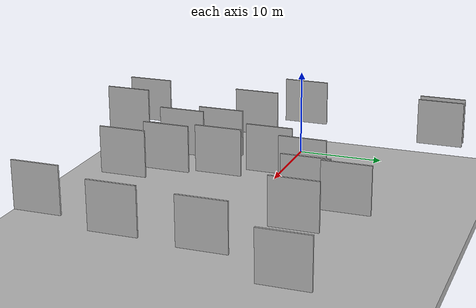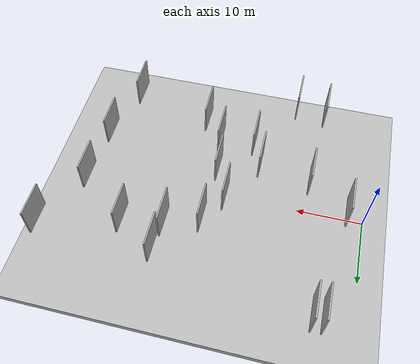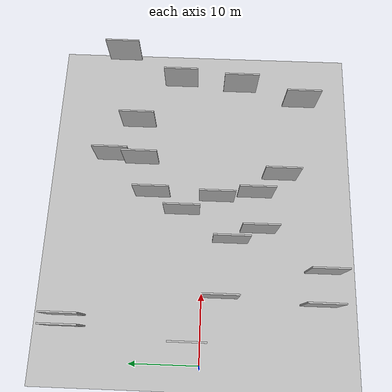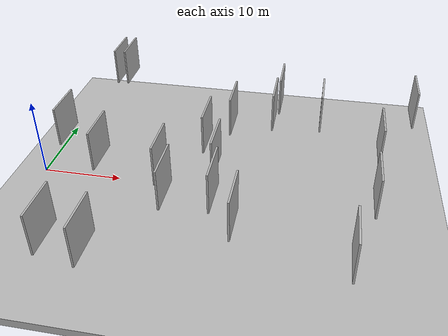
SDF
<?xml version="1.0" encoding="utf-8"?>

<sdf version="1.6">

   <world name="default">

      <gui fullscreen="0">

         <camera name="user_camera">

            <pose>-15 0 4.57585 0 0 0</pose>

            <view_controller>orbit</view_controller>

         </camera>

      </gui>

      <scene>

         <sky>

           <clouds>

             <speed>12</speed>

           </clouds>

         </sky>

         <ambient>0.4 0.4 0.4 1</ambient>

         <background>0.7 0.7 0.7 1</background>

         <shadows>1</shadows>

      </scene>

      <gravity>0 0 -9.8066</gravity>

      <magnetic_field>6e-06 2.3e-05 -4.2e-05</magnetic_field>

      <physics default="0" name="default_physics" type="ode">

         <ode>

            <solver>

               <type>quick</type>

               <iters>10</iters>

               <sor>1.0</sor>

               <use_dynamic_moi_rescaling>0</use_dynamic_moi_rescaling>

            </solver>

            <constraints>

               <cfm>0</cfm>

               <erp>0.2</erp>

               <contact_max_correcting_vel>100</contact_max_correcting_vel>

               <contact_surface_layer>0.001</contact_surface_layer>

            </constraints>

         </ode>

         <max_step_size>0.004</max_step_size>

         <real_time_factor>1</real_time_factor>

         <real_time_update_rate>250</real_time_update_rate>

      </physics>

      <light name="sun" type="directional">

         <cast_shadows>1</cast_shadows>

         <pose>0 0 10 0 0 0</pose>

         <diffuse>0.8 0.8 0.8 1</diffuse>

         <specular>0.2 0.2 0.2 1</specular>

         <attenuation>

            <range>1000</range>

            <constant>0.9</constant>

            <linear>0.01</linear>

            <quadratic>0.001</quadratic>

         </attenuation>

         <direction>-0.5 0.1 -0.9</direction>

      </light>

      <include>

         <name>ground_plane_1</name>

         <uri>model://HANNAS_ground_plane</uri>

         <pose>0 0 0  0 0 0</pose>

      </include>

      <include>

         <name>ground_plane_2</name>

         <uri>model://HANNAS_ground_plane</uri>

         <pose>100 0 0  0 0 0</pose>

      </include>

      <model name="HANNAS_wall_1">

         <static>1</static>

         <pose frame="">26.5511 -10.7460 5.0 0.000000 0.000000 1.570796</pose>

         <link name="link">

            <pose frame="">0 0 2.50 0 0 0</pose>

            <collision name="collision">

               <geometry>

                  <box>

                     <size>5.00 0.2 5.00</size>

                  </box>

               </geometry>

               <max_contacts>10</max_contacts>

               <surface>

                  <contact>

                     <ode/>

                  </contact>

                  <bounce/>

                  <friction>

                     <torsional>

                        <ode/>

                     </torsional>

                     <ode/>

                  </friction>

               </surface>

            </collision>

            <visual name="visual">

               <cast_shadows>0</cast_shadows>

               <geometry>

                  <box>

                     <size>5.00 0.2 5.00</size>

                  </box>

               </geometry>

               <material>

                  <script>

                     <uri>model://HANNAS_wall/materials/scripts</uri>

                     <uri>model://HANNAS_wall/materials/textures</uri>

                     <name>vrc/HANNAS_wall</name>

                  </script>

               </material>

            </visual>

            <self_collide>0</self_collide>

            <enable_wind>0</enable_wind>

            <kinematic>0</kinematic>

         </link>

      </model>

      <model name="HANNAS_wall_2">

         <static>1</static>

         <pose frame="">3.2593 1.6454 5.0 0.000000 0.000000 1.570796</pose>

         <link name="link">

            <pose frame="">0 0 2.50 0 0 0</pose>

            <collision name="collision">

               <geometry>

                  <box>

                     <size>5.00 0.2 5.00</size>

                  </box>

               </geometry>

               <max_contacts>10</max_contacts>

               <surface>

                  <contact>

                     <ode/>

                  </contact>

                  <bounce/>

                  <friction>

                     <torsional>

                        <ode/>

                     </torsional>

                     <ode/>

                  </friction>

               </surface>

            </collision>

            <visual name="visual">

               <cast_shadows>0</cast_shadows>

               <geometry>

                  <box>

                     <size>5.00 0.2 5.00</size>

                  </box>

               </geometry>

               <material>

                  <script>

                     <uri>model://HANNAS_wall/materials/scripts</uri>

                     <uri>model://HANNAS_wall/materials/textures</uri>

                     <name>vrc/HANNAS_wall</name>

                  </script>

               </material>

            </visual>

            <self_collide>0</self_collide>

            <enable_wind>0</enable_wind>

            <kinematic>0</kinematic>

         </link>

      </model>

      <model name="HANNAS_wall_3">

         <static>1</static>

         <pose frame="">40.8356 -4.8632 5.0 0.000000 0.000000 1.570796</pose>

         <link name="link">

            <pose frame="">0 0 2.50 0 0 0</pose>

            <collision name="collision">

               <geometry>

                  <box>

                     <size>5.00 0.2 5.00</size>

                  </box>

               </geometry>

               <max_contacts>10</max_contacts>

               <surface>

                  <contact>

                     <ode/>

                  </contact>

                  <bounce/>

                  <friction>

                     <torsional>

                        <ode/>

                     </torsional>

                     <ode/>

                  </friction>

               </surface>

            </collision>

            <visual name="visual">

               <cast_shadows>0</cast_shadows>

               <geometry>

                  <box>

                     <size>5.00 0.2 5.00</size>

                  </box>

               </geometry>

               <material>

                  <script>

                     <uri>model://HANNAS_wall/materials/scripts</uri>

                     <uri>model://HANNAS_wall/materials/textures</uri>

                     <name>vrc/HANNAS_wall</name>

                  </script>

               </material>

            </visual>

            <self_collide>0</self_collide>

            <enable_wind>0</enable_wind>

            <kinematic>0</kinematic>

         </link>

      </model>

      <model name="HANNAS_wall_4">

         <static>1</static>

         <pose frame="">38.5393 -13.8906 5.0 0.000000 0.000000 1.570796</pose>

         <link name="link">

            <pose frame="">0 0 2.50 0 0 0</pose>

            <collision name="collision">

               <geometry>

                  <box>

                     <size>5.00 0.2 5.00</size>

                  </box>

               </geometry>

               <max_contacts>10</max_contacts>

               <surface>

                  <contact>

                     <ode/>

                  </contact>

                  <bounce/>

                  <friction>

                     <torsional>

                        <ode/>

                     </torsional>

                     <ode/>

                  </friction>

               </surface>

            </collision>

            <visual name="visual">

               <cast_shadows>0</cast_shadows>

               <geometry>

                  <box>

                     <size>5.00 0.2 5.00</size>

                  </box>

               </geometry>

               <material>

                  <script>

                     <uri>model://HANNAS_wall/materials/scripts</uri>

                     <uri>model://HANNAS_wall/materials/textures</uri>

                     <name>vrc/HANNAS_wall</name>

                  </script>

               </material>

            </visual>

            <self_collide>0</self_collide>

            <enable_wind>0</enable_wind>

            <kinematic>0</kinematic>

         </link>

      </model>

      <model name="HANNAS_wall_5">

         <static>1</static>

         <pose frame="">28.8122 13.5344 5.0 0.000000 0.000000 1.570796</pose>

         <link name="link">

            <pose frame="">0 0 2.50 0 0 0</pose>

            <collision name="collision">

               <geometry>

                  <box>

                     <size>5.00 0.2 5.00</size>

                  </box>

               </geometry>

               <max_contacts>10</max_contacts>

               <surface>

                  <contact>

                     <ode/>

                  </contact>

                  <bounce/>

                  <friction>

                     <torsional>

                        <ode/>

                     </torsional>

                     <ode/>

                  </friction>

               </surface>

            </collision>

            <visual name="visual">

               <cast_shadows>0</cast_shadows>

               <geometry>

                  <box>

                     <size>5.00 0.2 5.00</size>

                  </box>

               </geometry>

               <material>

                  <script>

                     <uri>model://HANNAS_wall/materials/scripts</uri>

                     <uri>model://HANNAS_wall/materials/textures</uri>

                     <name>vrc/HANNAS_wall</name>

                  </script>

               </material>

            </visual>

            <self_collide>0</self_collide>

            <enable_wind>0</enable_wind>

            <kinematic>0</kinematic>

         </link>

      </model>

      <model name="HANNAS_wall_6">

         <static>1</static>

         <pose frame="">16.8588 -3.7617 5.0 0.000000 0.000000 1.570796</pose>

         <link name="link">

            <pose frame="">0 0 2.50 0 0 0</pose>

            <collision name="collision">

               <geometry>

                  <box>

                     <size>5.00 0.2 5.00</size>

                  </box>

               </geometry>

               <max_contacts>10</max_contacts>

               <surface>

                  <contact>

                     <ode/>

                  </contact>

                  <bounce/>

                  <friction>

                     <torsional>

                        <ode/>

                     </torsional>

                     <ode/>

                  </friction>

               </surface>

            </collision>

            <visual name="visual">

               <cast_shadows>0</cast_shadows>

               <geometry>

                  <box>

                     <size>5.00 0.2 5.00</size>

                  </box>

               </geometry>

               <material>

                  <script>

                     <uri>model://HANNAS_wall/materials/scripts</uri>

                     <uri>model://HANNAS_wall/materials/textures</uri>

                     <name>vrc/HANNAS_wall</name>

                  </script>

               </material>

            </visual>

            <self_collide>0</self_collide>

            <enable_wind>0</enable_wind>

            <kinematic>0</kinematic>

         </link>

      </model>

      <model name="HANNAS_wall_7">

         <static>1</static>

         <pose frame="">20.8254 3.1237 5.0 0.000000 0.000000 1.570796</pose>

         <link name="link">

            <pose frame="">0 0 2.50 0 0 0</pose>

            <collision name="collision">

               <geometry>

                  <box>

                     <size>5.00 0.2 5.00</size>

                  </box>

               </geometry>

               <max_contacts>10</max_contacts>

               <surface>

                  <contact>

                     <ode/>

                  </contact>

                  <bounce/>

                  <friction>

                     <torsional>

                        <ode/>

                     </torsional>

                     <ode/>

                  </friction>

               </surface>

            </collision>

            <visual name="visual">

               <cast_shadows>0</cast_shadows>

               <geometry>

                  <box>

                     <size>5.00 0.2 5.00</size>

                  </box>

               </geometry>

               <material>

                  <script>

                     <uri>model://HANNAS_wall/materials/scripts</uri>

                     <uri>model://HANNAS_wall/materials/textures</uri>

                     <name>vrc/HANNAS_wall</name>

                  </script>

               </material>

            </visual>

            <self_collide>0</self_collide>

            <enable_wind>0</enable_wind>

            <kinematic>0</kinematic>

         </link>

      </model>

      <model name="HANNAS_wall_8">

         <static>1</static>

         <pose frame="">8.5311 -15.8332 5.0 0.000000 0.000000 1.570796</pose>

         <link name="link">

            <pose frame="">0 0 2.50 0 0 0</pose>

            <collision name="collision">

               <geometry>

                  <box>

                     <size>5.00 0.2 5.00</size>

                  </box>

               </geometry>

               <max_contacts>10</max_contacts>

               <surface>

                  <contact>

                     <ode/>

                  </contact>

                  <bounce/>

                  <friction>

                     <torsional>

                        <ode/>

                     </torsional>

                     <ode/>

                  </friction>

               </surface>

            </collision>

            <visual name="visual">

               <cast_shadows>0</cast_shadows>

               <geometry>

                  <box>

                     <size>5.00 0.2 5.00</size>

                  </box>

               </geometry>

               <material>

                  <script>

                     <uri>model://HANNAS_wall/materials/scripts</uri>

                     <uri>model://HANNAS_wall/materials/textures</uri>

                     <name>vrc/HANNAS_wall</name>

                  </script>

               </material>

            </visual>

            <self_collide>0</self_collide>

            <enable_wind>0</enable_wind>

            <kinematic>0</kinematic>

         </link>

      </model>

      <model name="HANNAS_wall_9">

         <static>1</static>

         <pose frame="">9.1746 -2.4098 5.0 0.000000 0.000000 1.570796</pose>

         <link name="link">

            <pose frame="">0 0 2.50 0 0 0</pose>

            <collision name="collision">

               <geometry>

                  <box>

                     <size>5.00 0.2 5.00</size>

                  </box>

               </geometry>

               <max_contacts>10</max_contacts>

               <surface>

                  <contact>

                     <ode/>

                  </contact>

                  <bounce/>

                  <friction>

                     <torsional>

                        <ode/>

                     </torsional>

                     <ode/>

                  </friction>

               </surface>

            </collision>

            <visual name="visual">

               <cast_shadows>0</cast_shadows>

               <geometry>

                  <box>

                     <size>5.00 0.2 5.00</size>

                  </box>

               </geometry>

               <material>

                  <script>

                     <uri>model://HANNAS_wall/materials/scripts</uri>

                     <uri>model://HANNAS_wall/materials/textures</uri>

                     <name>vrc/HANNAS_wall</name>

                  </script>

               </material>

            </visual>

            <self_collide>0</self_collide>

            <enable_wind>0</enable_wind>

            <kinematic>0</kinematic>

         </link>

      </model>

      <model name="HANNAS_wall_10">

         <static>1</static>

         <pose frame="">23.2894 7.4678 5.0 0.000000 0.000000 1.570796</pose>

         <link name="link">

            <pose frame="">0 0 2.50 0 0 0</pose>

            <collision name="collision">

               <geometry>

                  <box>

                     <size>5.00 0.2 5.00</size>

                  </box>

               </geometry>

               <max_contacts>10</max_contacts>

               <surface>

                  <contact>

                     <ode/>

                  </contact>

                  <bounce/>

                  <friction>

                     <torsional>

                        <ode/>

                     </torsional>

                     <ode/>

                  </friction>

               </surface>

            </collision>

            <visual name="visual">

               <cast_shadows>0</cast_shadows>

               <geometry>

                  <box>

                     <size>5.00 0.2 5.00</size>

                  </box>

               </geometry>

               <material>

                  <script>

                     <uri>model://HANNAS_wall/materials/scripts</uri>

                     <uri>model://HANNAS_wall/materials/textures</uri>

                     <name>vrc/HANNAS_wall</name>

                  </script>

               </material>

            </visual>

            <self_collide>0</self_collide>

            <enable_wind>0</enable_wind>

            <kinematic>0</kinematic>

         </link>

      </model>

      <model name="HANNAS_wall_11">

         <static>1</static>

         <pose frame="">18.4514 -7.6210 5.0 0.000000 0.000000 1.570796</pose>

         <link name="link">

            <pose frame="">0 0 2.50 0 0 0</pose>

            <collision name="collision">

               <geometry>

                  <box>

                     <size>5.00 0.2 5.00</size>

                  </box>

               </geometry>

               <max_contacts>10</max_contacts>

               <surface>

                  <contact>

                     <ode/>

                  </contact>

                  <bounce/>

                  <friction>

                     <torsional>

                        <ode/>

                     </torsional>

                     <ode/>

                  </friction>

               </surface>

            </collision>

            <visual name="visual">

               <cast_shadows>0</cast_shadows>

               <geometry>

                  <box>

                     <size>5.00 0.2 5.00</size>

                  </box>

               </geometry>

               <material>

                  <script>

                     <uri>model://HANNAS_wall/materials/scripts</uri>

                     <uri>model://HANNAS_wall/materials/textures</uri>

                     <name>vrc/HANNAS_wall</name>

                  </script>

               </material>

            </visual>

            <self_collide>0</self_collide>

            <enable_wind>0</enable_wind>

            <kinematic>0</kinematic>

         </link>

      </model>

      <model name="HANNAS_wall_12">

         <static>1</static>

         <pose frame="">4.7697 17.9008 5.0 0.000000 0.000000 1.570796</pose>

         <link name="link">

            <pose frame="">0 0 2.50 0 0 0</pose>

            <collision name="collision">

               <geometry>

                  <box>

                     <size>5.00 0.2 5.00</size>

                  </box>

               </geometry>

               <max_contacts>10</max_contacts>

               <surface>

                  <contact>

                     <ode/>

                  </contact>

                  <bounce/>

                  <friction>

                     <torsional>

                        <ode/>

                     </torsional>

                     <ode/>

                  </friction>

               </surface>

            </collision>

            <visual name="visual">

               <cast_shadows>0</cast_shadows>

               <geometry>

                  <box>

                     <size>5.00 0.2 5.00</size>

                  </box>

               </geometry>

               <material>

                  <script>

                     <uri>model://HANNAS_wall/materials/scripts</uri>

                     <uri>model://HANNAS_wall/materials/textures</uri>

                     <name>vrc/HANNAS_wall</name>

                  </script>

               </material>

            </visual>

            <self_collide>0</self_collide>

            <enable_wind>0</enable_wind>

            <kinematic>0</kinematic>

         </link>

      </model>

      <model name="HANNAS_wall_13">

         <static>1</static>

         <pose frame="">6.2085 17.9881 5.0 0.000000 0.000000 1.570796</pose>

         <link name="link">

            <pose frame="">0 0 2.50 0 0 0</pose>

            <collision name="collision">

               <geometry>

                  <box>

                     <size>5.00 0.2 5.00</size>

                  </box>

               </geometry>

               <max_contacts>10</max_contacts>

               <surface>

                  <contact>

                     <ode/>

                  </contact>

                  <bounce/>

                  <friction>

                     <torsional>

                        <ode/>

                     </torsional>

                     <ode/>

                  </friction>

               </surface>

            </collision>

            <visual name="visual">

               <cast_shadows>0</cast_shadows>

               <geometry>

                  <box>

                     <size>5.00 0.2 5.00</size>

                  </box>

               </geometry>

               <material>

                  <script>

                     <uri>model://HANNAS_wall/materials/scripts</uri>

                     <uri>model://HANNAS_wall/materials/textures</uri>

                     <name>vrc/HANNAS_wall</name>

                  </script>

               </material>

            </visual>

            <self_collide>0</self_collide>

            <enable_wind>0</enable_wind>

            <kinematic>0</kinematic>

         </link>

      </model>

      <model name="HANNAS_wall_14">

         <static>1</static>

         <pose frame="">12.9958 -16.5812 5.0 0.000000 0.000000 1.570796</pose>

         <link name="link">

            <pose frame="">0 0 2.50 0 0 0</pose>

            <collision name="collision">

               <geometry>

                  <box>

                     <size>5.00 0.2 5.00</size>

                  </box>

               </geometry>

               <max_contacts>10</max_contacts>

               <surface>

                  <contact>

                     <ode/>

                  </contact>

                  <bounce/>

                  <friction>

                     <torsional>

                        <ode/>

                     </torsional>

                     <ode/>

                  </friction>

               </surface>

            </collision>

            <visual name="visual">

               <cast_shadows>0</cast_shadows>

               <geometry>

                  <box>

                     <size>5.00 0.2 5.00</size>

                  </box>

               </geometry>

               <material>

                  <script>

                     <uri>model://HANNAS_wall/materials/scripts</uri>

                     <uri>model://HANNAS_wall/materials/textures</uri>

                     <name>vrc/HANNAS_wall</name>

                  </script>

               </material>

            </visual>

            <self_collide>0</self_collide>

            <enable_wind>0</enable_wind>

            <kinematic>0</kinematic>

         </link>

      </model>

      <model name="HANNAS_wall_15">

         <static>1</static>

         <pose frame="">34.3257 10.1600 5.0 0.000000 0.000000 1.570796</pose>

         <link name="link">

            <pose frame="">0 0 2.50 0 0 0</pose>

            <collision name="collision">

               <geometry>

                  <box>

                     <size>5.00 0.2 5.00</size>

                  </box>

               </geometry>

               <max_contacts>10</max_contacts>

               <surface>

                  <contact>

                     <ode/>

                  </contact>

                  <bounce/>

                  <friction>

                     <torsional>

                        <ode/>

                     </torsional>

                     <ode/>

                  </friction>

               </surface>

            </collision>

            <visual name="visual">

               <cast_shadows>0</cast_shadows>

               <geometry>

                  <box>

                     <size>5.00 0.2 5.00</size>

                  </box>

               </geometry>

               <material>

                  <script>

                     <uri>model://HANNAS_wall/materials/scripts</uri>

                     <uri>model://HANNAS_wall/materials/textures</uri>

                     <name>vrc/HANNAS_wall</name>

                  </script>

               </material>

            </visual>

            <self_collide>0</self_collide>

            <enable_wind>0</enable_wind>

            <kinematic>0</kinematic>

         </link>

      </model>

      <model name="HANNAS_wall_16">

         <static>1</static>

         <pose frame="">41.4924 4.1172 5.0 0.000000 0.000000 1.570796</pose>

         <link name="link">

            <pose frame="">0 0 2.50 0 0 0</pose>

            <collision name="collision">

               <geometry>

                  <box>

                     <size>5.00 0.2 5.00</size>

                  </box>

               </geometry>

               <max_contacts>10</max_contacts>

               <surface>

                  <contact>

                     <ode/>

                  </contact>

                  <bounce/>

                  <friction>

                     <torsional>

                        <ode/>

                     </torsional>

                     <ode/>

                  </friction>

               </surface>

            </collision>

            <visual name="visual">

               <cast_shadows>0</cast_shadows>

               <geometry>

                  <box>

                     <size>5.00 0.2 5.00</size>

                  </box>

               </geometry>

               <material>

                  <script>

                     <uri>model://HANNAS_wall/materials/scripts</uri>

                     <uri>model://HANNAS_wall/materials/textures</uri>

                     <name>vrc/HANNAS_wall</name>

                  </script>

               </material>

            </visual>

            <self_collide>0</self_collide>

            <enable_wind>0</enable_wind>

            <kinematic>0</kinematic>

         </link>

      </model>

      <model name="HANNAS_wall_17">

         <static>1</static>

         <pose frame="">23.7131 -7.1701 5.0 0.000000 0.000000 1.570796</pose>

         <link name="link">

            <pose frame="">0 0 2.50 0 0 0</pose>

            <collision name="collision">

               <geometry>

                  <box>

                     <size>5.00 0.2 5.00</size>

                  </box>

               </geometry>

               <max_contacts>10</max_contacts>

               <surface>

                  <contact>

                     <ode/>

                  </contact>

                  <bounce/>

                  <friction>

                     <torsional>

                        <ode/>

                     </torsional>

                     <ode/>

                  </friction>

               </surface>

            </collision>

            <visual name="visual">

               <cast_shadows>0</cast_shadows>

               <geometry>

                  <box>

                     <size>5.00 0.2 5.00</size>

                  </box>

               </geometry>

               <material>

                  <script>

                     <uri>model://HANNAS_wall/materials/scripts</uri>

                     <uri>model://HANNAS_wall/materials/textures</uri>

                     <name>vrc/HANNAS_wall</name>

                  </script>

               </material>

            </visual>

            <self_collide>0</self_collide>

            <enable_wind>0</enable_wind>

            <kinematic>0</kinematic>

         </link>

      </model>

      <model name="HANNAS_wall_18">

         <static>1</static>

         <pose frame="">22.9192 -1.7013 5.0 0.000000 0.000000 1.570796</pose>

         <link name="link">

            <pose frame="">0 0 2.50 0 0 0</pose>

            <collision name="collision">

               <geometry>

                  <box>

                     <size>5.00 0.2 5.00</size>

                  </box>

               </geometry>

               <max_contacts>10</max_contacts>

               <surface>

                  <contact>

                     <ode/>

                  </contact>

                  <bounce/>

                  <friction>

                     <torsional>

                        <ode/>

                     </torsional>

                     <ode/>

                  </friction>

               </surface>

            </collision>

            <visual name="visual">

               <cast_shadows>0</cast_shadows>

               <geometry>

                  <box>

                     <size>5.00 0.2 5.00</size>

                  </box>

               </geometry>

               <material>

                  <script>

                     <uri>model://HANNAS_wall/materials/scripts</uri>

                     <uri>model://HANNAS_wall/materials/textures</uri>

                     <name>vrc/HANNAS_wall</name>

                  </script>

               </material>

            </visual>

            <self_collide>0</self_collide>

            <enable_wind>0</enable_wind>

            <kinematic>0</kinematic>

         </link>

      </model>

      <model name="HANNAS_wall_19">

         <static>1</static>

         <pose frame="">28.3537 9.3815 5.0 0.000000 0.000000 1.570796</pose>

         <link name="link">

            <pose frame="">0 0 2.50 0 0 0</pose>

            <collision name="collision">

               <geometry>

                  <box>

                     <size>5.00 0.2 5.00</size>

                  </box>

               </geometry>

               <max_contacts>10</max_contacts>

               <surface>

                  <contact>

                     <ode/>

                  </contact>

                  <bounce/>

                  <friction>

                     <torsional>

                        <ode/>

                     </torsional>

                     <ode/>

                  </friction>

               </surface>

            </collision>

            <visual name="visual">

               <cast_shadows>0</cast_shadows>

               <geometry>

                  <box>

                     <size>5.00 0.2 5.00</size>

                  </box>

               </geometry>

               <material>

                  <script>

                     <uri>model://HANNAS_wall/materials/scripts</uri>

                     <uri>model://HANNAS_wall/materials/textures</uri>

                     <name>vrc/HANNAS_wall</name>

                  </script>

               </material>

            </visual>

            <self_collide>0</self_collide>

            <enable_wind>0</enable_wind>

            <kinematic>0</kinematic>

         </link>

      </model>

      <model name="HANNAS_wall_20">

         <static>1</static>

         <pose frame="">45.9707 13.1160 5.0 0.000000 0.000000 1.570796</pose>

         <link name="link">

            <pose frame="">0 0 2.50 0 0 0</pose>

            <collision name="collision">

               <geometry>

                  <box>

                     <size>5.00 0.2 5.00</size>

                  </box>

               </geometry>

               <max_contacts>10</max_contacts>

               <surface>

                  <contact>

                     <ode/>

                  </contact>

                  <bounce/>

                  <friction>

                     <torsional>

                        <ode/>

                     </torsional>

                     <ode/>

                  </friction>

               </surface>

            </collision>

            <visual name="visual">

               <cast_shadows>0</cast_shadows>

               <geometry>

                  <box>

                     <size>5.00 0.2 5.00</size>

                  </box>

               </geometry>

               <material>

                  <script>

                     <uri>model://HANNAS_wall/materials/scripts</uri>

                     <uri>model://HANNAS_wall/materials/textures</uri>

                     <name>vrc/HANNAS_wall</name>

                  </script>

               </material>

            </visual>

            <self_collide>0</self_collide>

            <enable_wind>0</enable_wind>

            <kinematic>0</kinematic>

         </link>

      </model>

   </world>

</sdf>

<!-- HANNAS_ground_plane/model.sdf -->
<sdf version="1.4">
<model name="HANNAS_ground_plane">
  <static>true</static>
    <link name="link">
      <collision name="collision">
        <geometry>
          <plane>
            <normal>0 0 1</normal>
            <size>1000 1000</size>
          </plane>
        </geometry>
        <surface>
          <friction>
            <ode>
              <mu>100</mu>
              <mu2>50</mu2>
            </ode>
          </friction>
        </surface>
      </collision>
      <visual name="visual">
        <cast_shadows>false</cast_shadows>
        <geometry>
          <plane>
            <normal>0 0 1</normal>
            <size>1000 1000</size>
          </plane>
        </geometry>
        <material>
          <script>
            <uri>model://HANNAS_ground_plane/materials/scripts/HANNAS_ground_plane.material</uri>
	    <uri>model://HANNAS_ground_plane/materials/textures</uri>
            <name>HANNASGroundPlane/Image</name>
          </script>
        </material>
      </visual>
    </link>
  </model>
</sdf>
